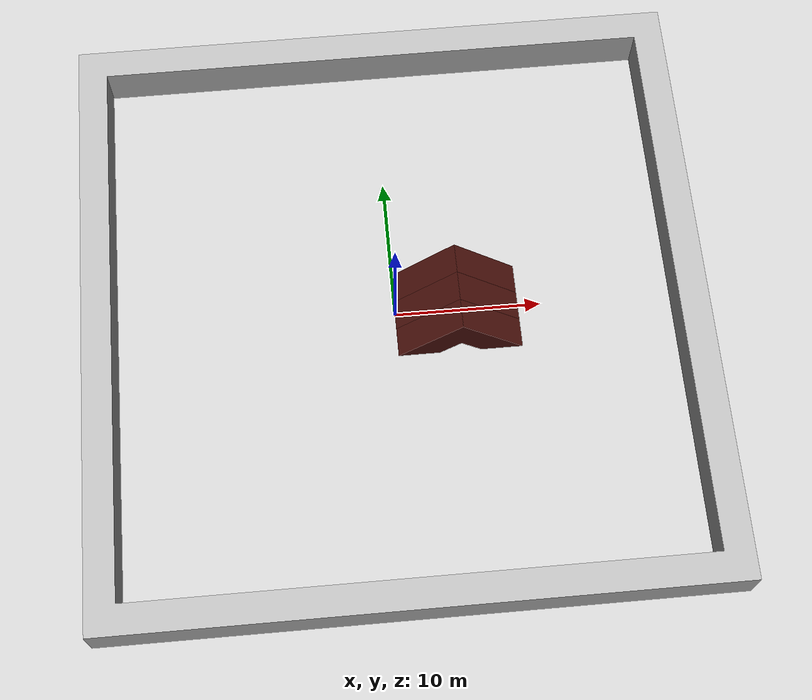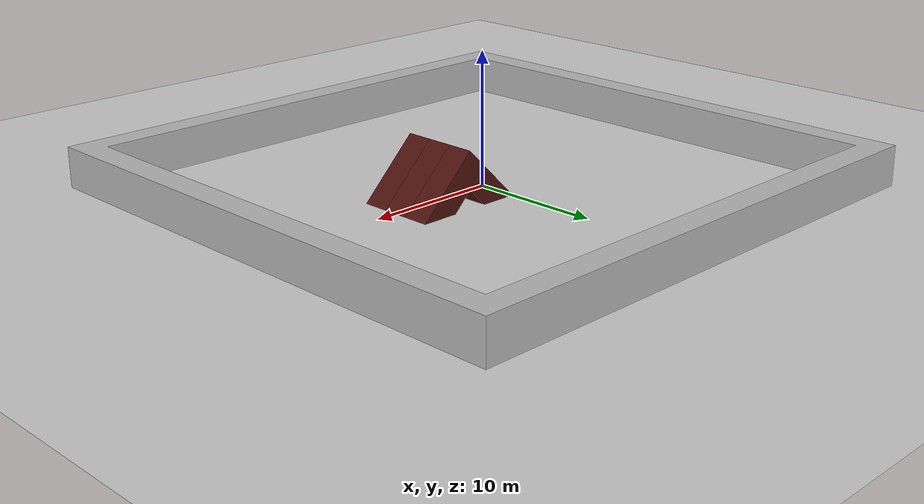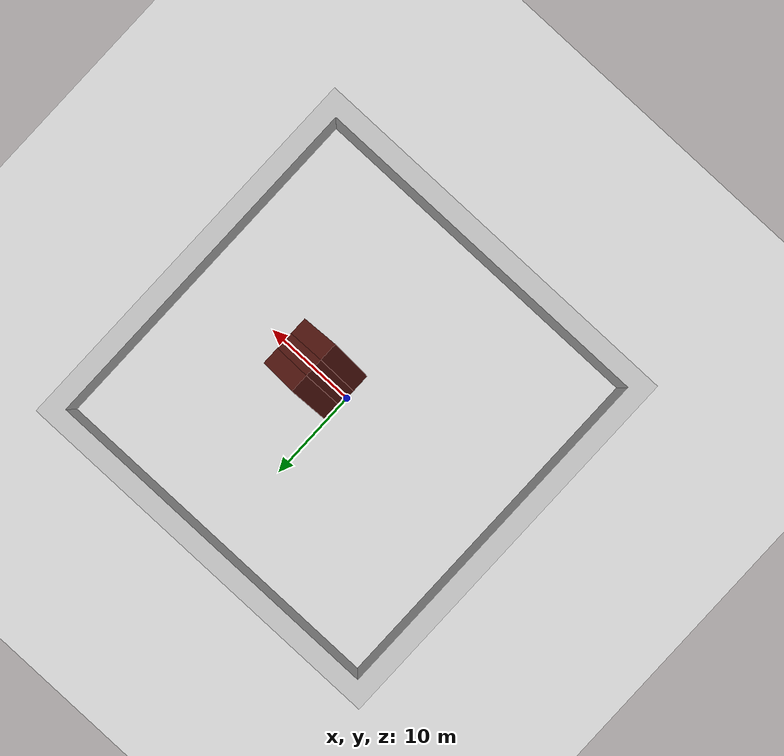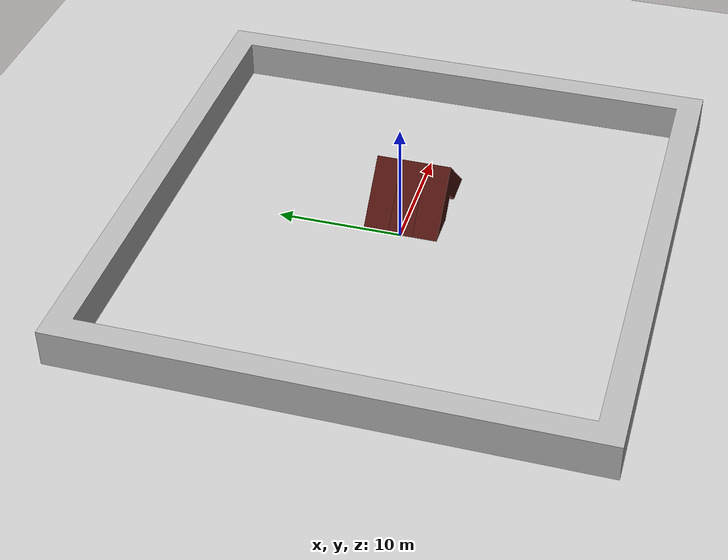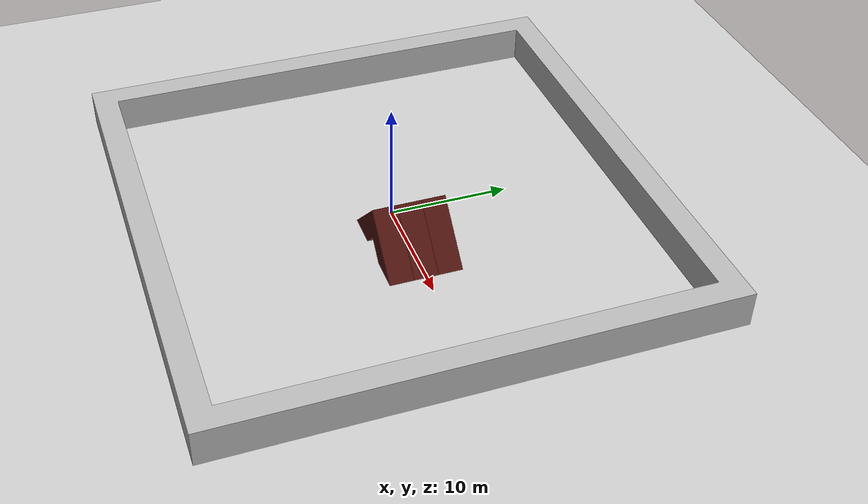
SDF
<sdf version="1.6">
 <world name="default">
  <light name="sun" type="directional">
   <pose>0 0 10 0 -0 0</pose>
   <diffuse>0.8 0.8 0.8 1</diffuse>
   <specular>0.1 0.1 0.1 1</specular>
   <attenuation>
    <range>1000</range>
    <constant>0.9</constant>
    <linear>0.01</linear>
    <quadratic>0.001</quadratic>
   </attenuation>
   <direction>-0.5 0.5 -1</direction>
  </light>
  <model name="ground_plane">
   <static>1</static>
   <link name="link">
    <collision name="collision">
     <geometry><plane><normal>0 0 1</normal><size>100 100</size></plane></geometry>
     <surface><friction><ode><mu>100</mu><mu2>50</mu2></ode></friction></surface>
    </collision>
    <visual name="visual">
     <cast_shadows>0</cast_shadows>
     <geometry><plane><normal>0 0 1</normal><size>100 100</size></plane></geometry>
     <material>
      <script><uri>file://media/materials/scripts/gazebo.material</uri><name>Gazebo/Grey</name></script>
     </material>
    </visual>
   </link>
  </model>
  <gravity>0 0 -9.8</gravity>
  <magnetic_field>6e-06 2.3e-05 -4.2e-05</magnetic_field>
  <atmosphere type="adiabatic"/>
  <physics name="default_physics" default="0" type="ode">
   <max_step_size>0.001</max_step_size>
   <real_time_factor>1</real_time_factor>
   <real_time_update_rate>1000</real_time_update_rate>
  </physics>
  <scene><ambient>0.4 0.4 0.4 1</ambient><background>0.7 0.7 0.7 1</background><shadows>1</shadows></scene>
  <spherical_coordinates>
   <surface_model>EARTH_WGS84</surface_model>
   <latitude_deg>0</latitude_deg>
   <longitude_deg>0</longitude_deg>
   <elevation>0</elevation>
   <heading_deg>0</heading_deg>
  </spherical_coordinates>
  <model name="roboskel_playground">
   <static>1</static>
   <link name="slope45">
    <collision name="collision">
     <pose>4.7 -4 0.01 0 -0 0</pose>
     <geometry>
      <mesh><uri>model://roboskel_playground/meshes/slope45.dae</uri><scale>1 1 1</scale></mesh>
     </geometry>
     <surface>
      <friction><ode><mu>1</mu><mu2>1</mu2></ode></friction>
      <contact><ode><kp>1e+07</kp><kd>1</kd><min_depth>0.001</min_depth><max_vel>0.1</max_vel></ode></contact>
     </surface>
    </collision>
    <visual name="visual">
     <cast_shadows>0</cast_shadows>
     <pose>4.7 -4 0.01 0 -0 0</pose>
     <geometry>
      <mesh><uri>model://roboskel_playground/meshes/slope45.dae</uri><scale>1 1 1</scale></mesh>
     </geometry>
     <material>
      <ambient>0.3 0.07 0.05 1</ambient>
      <diffuse>0.3 0.07 0.05 1</diffuse>
      <specular>0.1 0.1 0.1 1</specular>
      <emissive>0 0 0 0</emissive>
     </material>
    </visual>
   </link>
   <link name="slope45_1">
    <collision name="collision">
     <pose>4.7 -2 0.01 0 -0 0</pose>
     <geometry>
      <mesh><uri>model://roboskel_playground/meshes/slope45.dae</uri><scale>1 1 1</scale></mesh>
     </geometry>
     <surface>
      <friction><ode><mu>1</mu><mu2>1</mu2></ode></friction>
      <contact><ode><kp>1e+07</kp><kd>1</kd><min_depth>0.001</min_depth><max_vel>0.1</max_vel></ode></contact>
     </surface>
    </collision>
    <visual name="visual">
     <cast_shadows>0</cast_shadows>
     <pose>4.7 -2 0.01 0 -0 0</pose>
     <geometry>
      <mesh><uri>model://roboskel_playground/meshes/slope45.dae</uri><scale>1 1 1</scale></mesh>
     </geometry>
     <material>
      <ambient>0.3 0.07 0.05 1</ambient>
      <diffuse>0.3 0.07 0.05 1</diffuse>
      <specular>0.1 0.1 0.1 1</specular>
      <emissive>0 0 0 0</emissive>
     </material>
    </visual>
   </link>
   <link name="slope45_2">
    <collision name="collision">
     <pose>4.7 -6 0.01 0 -0 0</pose>
     <geometry>
      <mesh><uri>model://roboskel_playground/meshes/slope45.dae</uri><scale>1 1 1</scale></mesh>
     </geometry>
     <surface>
      <friction><ode><mu>1</mu><mu2>1</mu2></ode></friction>
      <contact><ode><kp>1e+07</kp><kd>1</kd><min_depth>0.001</min_depth><max_vel>0.1</max_vel></ode></contact>
     </surface>
    </collision>
    <visual name="visual">
     <cast_shadows>0</cast_shadows>
     <pose>4.7 -6 0.01 0 -0 0</pose>
     <geometry>
      <mesh><uri>model://roboskel_playground/meshes/slope45.dae</uri><scale>1 1 1</scale></mesh>
     </geometry>
     <material>
      <ambient>0.3 0.07 0.05 1</ambient>
      <diffuse>0.3 0.07 0.05 1</diffuse>
      <specular>0.1 0.1 0.1 1</specular>
      <emissive>0 0 0 0</emissive>
     </material>
    </visual>
   </link>
   <link name="boundaries">
    <collision name="collision">
     <pose>0 0 0.01 0 -0 0</pose>
     <geometry>
      <mesh><uri>model://roboskel_playground/meshes/boundaries.dae</uri><scale>1 1 1</scale></mesh>
     </geometry>
     <surface>
      <friction><ode><mu>1</mu><mu2>1</mu2></ode></friction>
      <contact><ode><kp>1e+07</kp><kd>1</kd><min_depth>0.001</min_depth><max_vel>0.1</max_vel></ode></contact>
     </surface>
    </collision>
    <visual name="visual">
     <cast_shadows>0</cast_shadows>
     <pose>0 0 0.01 0 -0 0</pose>
     <geometry>
      <mesh><uri>model://roboskel_playground/meshes/boundaries.dae</uri><scale>1 1 1</scale></mesh>
     </geometry>
    </visual>
   </link>
   <link name="plane">
    <collision name="collision">
     <pose>0 0 0.01 0 -0 0</pose>
     <geometry><mesh><uri>model://roboskel_playground/meshes/plane.dae</uri><scale>1 1 1</scale></mesh></geometry>
     <surface>
      <friction><ode><mu>1</mu><mu2>1</mu2></ode></friction>
      <contact><ode><kp>1e+07</kp><kd>1</kd><min_depth>0.001</min_depth><max_vel>0.1</max_vel></ode></contact>
     </surface>
    </collision>
    <visual name="visual">
     <cast_shadows>0</cast_shadows>
     <pose>0 0 0.01 0 -0 0</pose>
     <geometry><mesh><uri>model://roboskel_playground/meshes/plane.dae</uri><scale>1 1 1</scale></mesh></geometry>
     <material>
      <ambient>0.8 0.8 0.8 1</ambient>
      <diffuse>0.8 0.8 0.8 1</diffuse>
      <specular>0.1 0.1 0.1 1</specular>
      <emissive>0 0 0 0</emissive>
     </material>
    </visual>
   </link>
  </model>
 </world>
</sdf>
